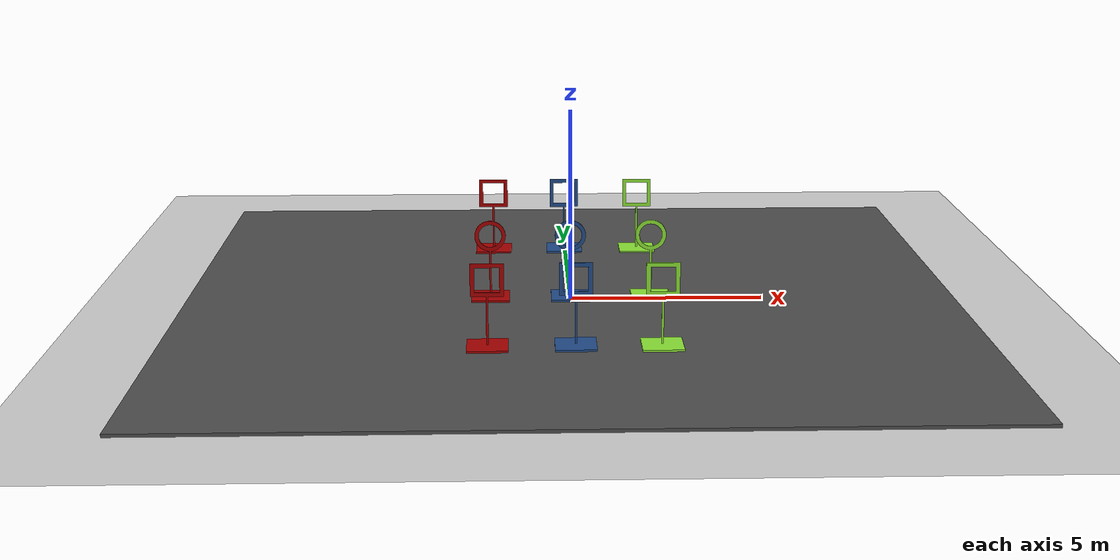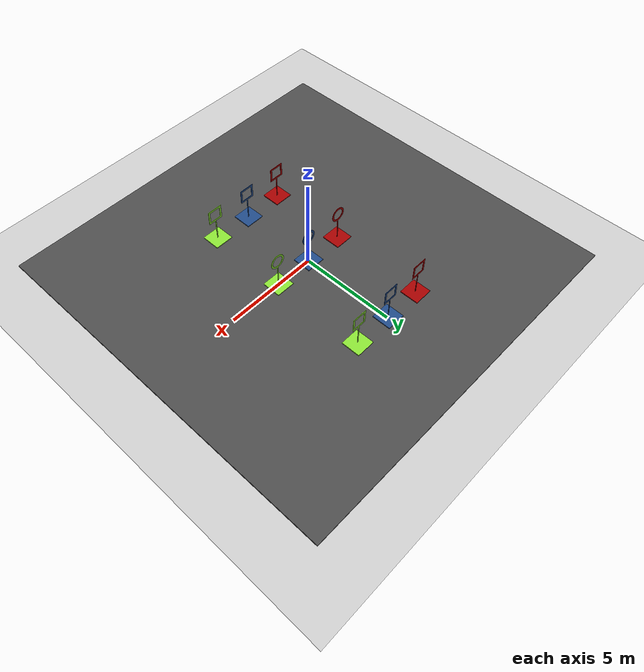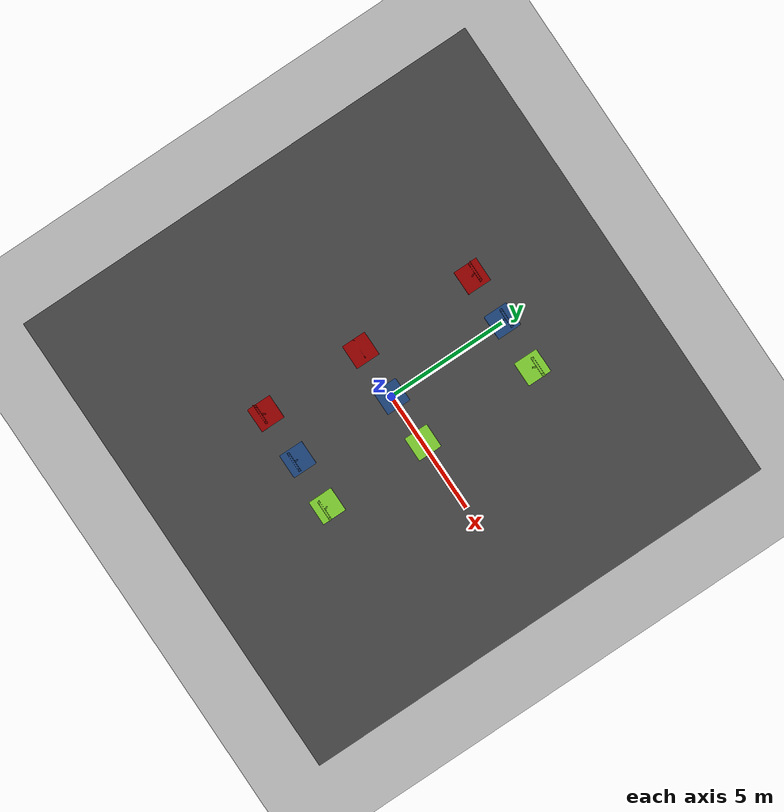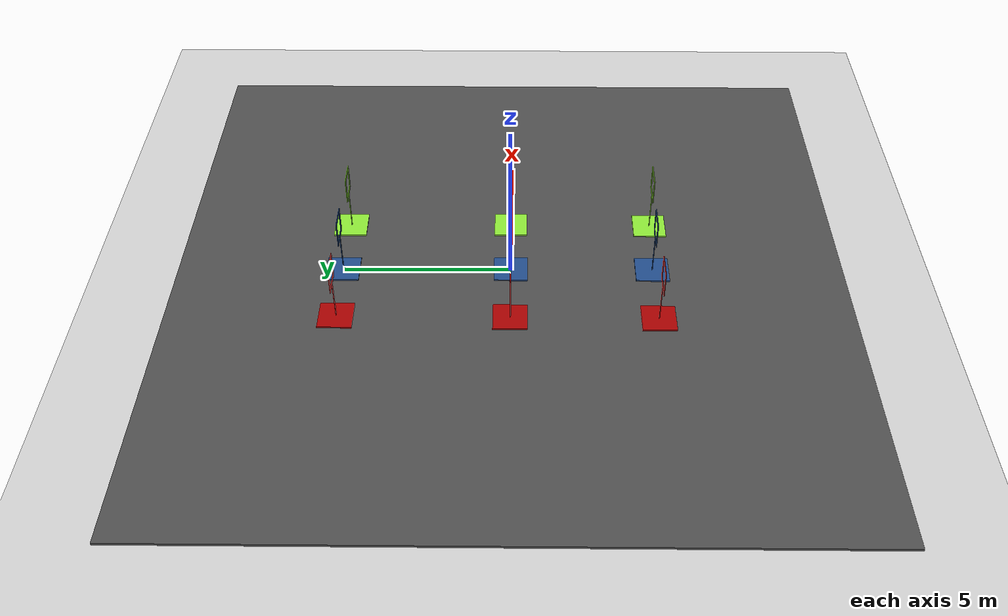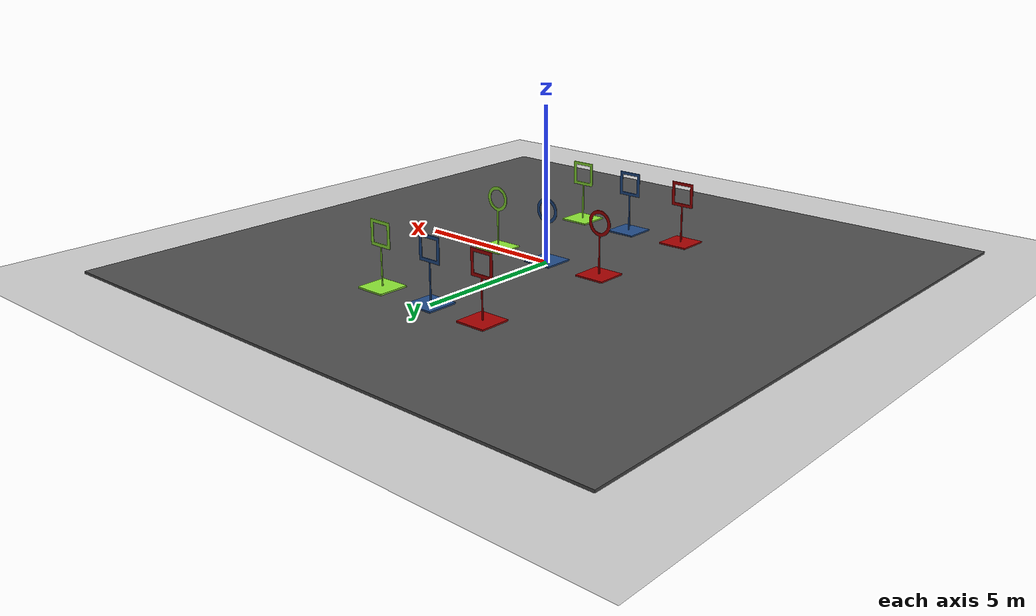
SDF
<sdf version="1.7">
 <world name="default">
  <light name="sun" type="directional">
   <pose>0 0 10 0 -0 0</pose>
   <diffuse>0.8 0.8 0.8 1</diffuse>
   <specular>0.2 0.2 0.2 1</specular>
   <attenuation>
    <range>1000</range>
    <constant>0.9</constant>
    <linear>0.01</linear>
    <quadratic>0.001</quadratic>
   </attenuation>
   <direction>-0.5 0.1 -0.9</direction>
   <spot><inner_angle>0</inner_angle><outer_angle>0</outer_angle><falloff>0</falloff></spot>
  </light>
  <model name="ground_plane">
   <static>1</static>
   <link name="link">
    <collision name="collision">
     <geometry><plane><normal>0 0 1</normal><size>100 100</size></plane></geometry>
     <surface><friction><ode><mu>100</mu><mu2>50</mu2></ode></friction></surface>
    </collision>
    <visual name="visual">
     <cast_shadows>0</cast_shadows>
     <geometry><plane><normal>0 0 1</normal><size>100 100</size></plane></geometry>
     <material>
      <script><uri>file://media/materials/scripts/gazebo.material</uri><name>Gazebo/Grey</name></script>
     </material>
    </visual>
   </link>
  </model>
  <gravity>0 0 -9.8</gravity>
  <magnetic_field>6e-06 2.3e-05 -4.2e-05</magnetic_field>
  <atmosphere type="adiabatic"/>
  <physics type="ode">
   <max_step_size>0.001</max_step_size>
   <real_time_factor>1</real_time_factor>
   <real_time_update_rate>1000</real_time_update_rate>
  </physics>
  <scene><ambient>0.4 0.4 0.4 1</ambient><background>0.7 0.7 0.7 1</background><shadows>1</shadows></scene>
  <spherical_coordinates>
   <surface_model>EARTH_WGS84</surface_model>
   <latitude_deg>0</latitude_deg>
   <longitude_deg>0</longitude_deg>
   <elevation>0</elevation>
   <heading_deg>0</heading_deg>
  </spherical_coordinates>
  <model name="asphalt_plane">
   <static>1</static>
   <link name="link">
    <collision name="collision"><geometry><box><size>20 20 0.1</size></box></geometry></collision>
    <visual name="visual">
     <cast_shadows>0</cast_shadows>
     <geometry><box><size>20 20 0.1</size></box></geometry>
     <material>
      <script>
       <uri>model://asphalt_plane/materials/scripts</uri>
       <uri>model://asphalt_plane/materials/textures</uri>
       <name>vrc/asphalt</name>
      </script>
     </material>
    </visual>
   </link>
   <pose>0.008905 0.014956 0 0 -0 0</pose>
  </model>
  <model name="square_gate">
   <link name="link_0">
    <inertial>
     <mass>1</mass>
     <inertia>
      <ixx>0.166667</ixx>
      <ixy>0</ixy>
      <ixz>0</ixz>
      <iyy>0.166667</iyy>
      <iyz>0</iyz>
      <izz>0.166667</izz>
     </inertia>
    </inertial>
    <visual name="visual">
     <geometry><mesh><uri>model://square_gate/square_gate.dae</uri><scale>1 1 1</scale></mesh></geometry>
     <material>
      <lighting>1</lighting>
      <script><uri>file://media/materials/scripts/gazebo.material</uri><name>Gazebo/Grey</name></script>
      <shader type="pixel"><normal_map>__default__</normal_map></shader>
      <ambient>0.541 0.886 0.204 1</ambient>
      <diffuse>0.7 0.7 0.7 1</diffuse>
      <specular>0.01 0.01 0.01 1</specular>
      <emissive>0 0 0 1</emissive>
     </material>
    </visual>
    <collision name="collision">
     <geometry><mesh><uri>model://square_gate/square_gate.dae</uri><scale>1 1 1</scale></mesh></geometry>
     <surface>
      <friction>
       <ode><mu>1</mu><mu2>1</mu2><fdir1>0 0 0</fdir1><slip1>0</slip1><slip2>0</slip2></ode>
       <torsional>
        <coefficient>1</coefficient>
        <patch_radius>0</patch_radius>
        <surface_radius>0</surface_radius>
        <use_patch_radius>1</use_patch_radius>
        <ode><slip>0</slip></ode>
       </torsional>
      </friction>
      <bounce><restitution_coefficient>0</restitution_coefficient><threshold>1e+06</threshold></bounce>
      <contact>
       <collide_without_contact>0</collide_without_contact>
       <collide_without_contact_bitmask>1</collide_without_contact_bitmask>
       <collide_bitmask>1</collide_bitmask>
       <ode>
        <soft_cfm>0</soft_cfm>
        <soft_erp>0.2</soft_erp>
        <kp>1e+13</kp>
        <kd>1</kd>
        <max_vel>0.01</max_vel>
        <min_depth>0</min_depth>
       </ode>
       <bullet>
        <split_impulse>1</split_impulse>
        <split_impulse_penetration_threshold>-0.01</split_impulse_penetration_threshold>
        <soft_cfm>0</soft_cfm>
        <soft_erp>0.2</soft_erp>
        <kp>1e+13</kp>
        <kd>1</kd>
       </bullet>
      </contact>
     </surface>
    </collision>
   </link>
   <static>0</static>
   <pose>2.06436 -4.30336 0.04999 0 -0 0.000399</pose>
  </model>
  <model name="square_gate_blue">
   <link name="link_0">
    <inertial>
     <mass>1</mass>
     <inertia>
      <ixx>0.166667</ixx>
      <ixy>0</ixy>
      <ixz>0</ixz>
      <iyy>0.166667</iyy>
      <iyz>0</iyz>
      <izz>0.166667</izz>
     </inertia>
    </inertial>
    <visual name="visual">
     <geometry><mesh><uri>model://square_gate/square_gate.dae</uri><scale>1 1 1</scale></mesh></geometry>
     <material>
      <lighting>1</lighting>
      <script><uri>file://media/materials/scripts/gazebo.material</uri><name>Gazebo/Grey</name></script>
      <shader type="pixel"><normal_map>__default__</normal_map></shader>
      <ambient>0.125 0.29 0.529 1</ambient>
      <diffuse>0.7 0.7 0.7 1</diffuse>
      <specular>0.01 0.01 0.01 1</specular>
      <emissive>0 0 0 1</emissive>
     </material>
    </visual>
    <collision name="collision">
     <geometry><mesh><uri>model://square_gate/square_gate.dae</uri><scale>1 1 1</scale></mesh></geometry>
     <surface>
      <friction>
       <ode><mu>1</mu><mu2>1</mu2><fdir1>0 0 0</fdir1><slip1>0</slip1><slip2>0</slip2></ode>
       <torsional>
        <coefficient>1</coefficient>
        <patch_radius>0</patch_radius>
        <surface_radius>0</surface_radius>
        <use_patch_radius>1</use_patch_radius>
        <ode><slip>0</slip></ode>
       </torsional>
      </friction>
      <bounce><restitution_coefficient>0</restitution_coefficient><threshold>1e+06</threshold></bounce>
      <contact>
       <collide_without_contact>0</collide_without_contact>
       <collide_without_contact_bitmask>1</collide_without_contact_bitmask>
       <collide_bitmask>1</collide_bitmask>
       <ode>
        <soft_cfm>0</soft_cfm>
        <soft_erp>0.2</soft_erp>
        <kp>1e+13</kp>
        <kd>1</kd>
        <max_vel>0.01</max_vel>
        <min_depth>0</min_depth>
       </ode>
       <bullet>
        <split_impulse>1</split_impulse>
        <split_impulse_penetration_threshold>-0.01</split_impulse_penetration_threshold>
        <soft_cfm>0</soft_cfm>
        <soft_erp>0.2</soft_erp>
        <kp>1e+13</kp>
        <kd>1</kd>
       </bullet>
      </contact>
     </surface>
    </collision>
   </link>
   <static>0</static>
   <pose>-0.004723 -4.24196 0.05 0 -0 0.000399</pose>
  </model>
  <model name="square_gate_red">
   <link name="link_0">
    <inertial>
     <mass>1</mass>
     <inertia>
      <ixx>0.166667</ixx>
      <ixy>0</ixy>
      <ixz>0</ixz>
      <iyy>0.166667</iyy>
      <iyz>0</iyz>
      <izz>0.166667</izz>
     </inertia>
    </inertial>
    <visual name="visual">
     <geometry><mesh><uri>model://square_gate/square_gate.dae</uri><scale>1 1 1</scale></mesh></geometry>
     <material>
      <lighting>1</lighting>
      <script><uri>file://media/materials/scripts/gazebo.material</uri><name>Gazebo/Grey</name></script>
      <shader type="pixel"><normal_map>__default__</normal_map></shader>
      <ambient>0.643 0 0 1</ambient>
      <diffuse>0.7 0.7 0.7 1</diffuse>
      <specular>0.01 0.01 0.01 1</specular>
      <emissive>0 0 0 1</emissive>
     </material>
    </visual>
    <collision name="collision">
     <geometry><mesh><uri>model://square_gate/square_gate.dae</uri><scale>1 1 1</scale></mesh></geometry>
     <surface>
      <friction>
       <ode><mu>1</mu><mu2>1</mu2><fdir1>0 0 0</fdir1><slip1>0</slip1><slip2>0</slip2></ode>
       <torsional>
        <coefficient>1</coefficient>
        <patch_radius>0</patch_radius>
        <surface_radius>0</surface_radius>
        <use_patch_radius>1</use_patch_radius>
        <ode><slip>0</slip></ode>
       </torsional>
      </friction>
      <bounce><restitution_coefficient>0</restitution_coefficient><threshold>1e+06</threshold></bounce>
      <contact>
       <collide_without_contact>0</collide_without_contact>
       <collide_without_contact_bitmask>1</collide_without_contact_bitmask>
       <collide_bitmask>1</collide_bitmask>
       <ode>
        <soft_cfm>0</soft_cfm>
        <soft_erp>0.2</soft_erp>
        <kp>1e+13</kp>
        <kd>1</kd>
        <max_vel>0.01</max_vel>
        <min_depth>0</min_depth>
       </ode>
       <bullet>
        <split_impulse>1</split_impulse>
        <split_impulse_penetration_threshold>-0.01</split_impulse_penetration_threshold>
        <soft_cfm>0</soft_cfm>
        <soft_erp>0.2</soft_erp>
        <kp>1e+13</kp>
        <kd>1</kd>
       </bullet>
      </contact>
     </surface>
    </collision>
   </link>
   <static>0</static>
   <pose>-2.11137 -4.28338 0.05 0 -0 0.000399</pose>
  </model>
  <model name="circle_gate_red">
   <link name="link_0">
    <inertial>
     <mass>1</mass>
     <inertia>
      <ixx>0.166667</ixx>
      <ixy>0</ixy>
      <ixz>0</ixz>
      <iyy>0.166667</iyy>
      <iyz>0</iyz>
      <izz>0.166667</izz>
     </inertia>
    </inertial>
    <visual name="visual">
     <geometry><mesh><uri>model://circle_gate/circle_gate.dae</uri><scale>1 1 1</scale></mesh></geometry>
     <material>
      <lighting>1</lighting>
      <script><uri>file://media/materials/scripts/gazebo.material</uri><name>Gazebo/Grey</name></script>
      <shader type="pixel"><normal_map>__default__</normal_map></shader>
      <ambient>0.643 0 0 1</ambient>
      <diffuse>0.7 0.7 0.7 1</diffuse>
      <specular>0.01 0.01 0.01 1</specular>
      <emissive>0 0 0 1</emissive>
     </material>
    </visual>
    <collision name="collision">
     <geometry><mesh><uri>model://circle_gate/circle_gate.dae</uri><scale>1 1 1</scale></mesh></geometry>
     <surface>
      <friction>
       <ode><mu>1</mu><mu2>1</mu2><fdir1>0 0 0</fdir1><slip1>0</slip1><slip2>0</slip2></ode>
       <torsional>
        <coefficient>1</coefficient>
        <patch_radius>0</patch_radius>
        <surface_radius>0</surface_radius>
        <use_patch_radius>1</use_patch_radius>
        <ode><slip>0</slip></ode>
       </torsional>
      </friction>
      <bounce><restitution_coefficient>0</restitution_coefficient><threshold>1e+06</threshold></bounce>
      <contact>
       <collide_without_contact>0</collide_without_contact>
       <collide_without_contact_bitmask>1</collide_without_contact_bitmask>
       <collide_bitmask>1</collide_bitmask>
       <ode>
        <soft_cfm>0</soft_cfm>
        <soft_erp>0.2</soft_erp>
        <kp>1e+13</kp>
        <kd>1</kd>
        <max_vel>0.01</max_vel>
        <min_depth>0</min_depth>
       </ode>
       <bullet>
        <split_impulse>1</split_impulse>
        <split_impulse_penetration_threshold>-0.01</split_impulse_penetration_threshold>
        <soft_cfm>0</soft_cfm>
        <soft_erp>0.2</soft_erp>
        <kp>1e+13</kp>
        <kd>1</kd>
       </bullet>
      </contact>
     </surface>
    </collision>
   </link>
   <static>0</static>
   <pose>-2.09564 0.002686 0.05 0 -0 0</pose>
  </model>
  <model name="square_gate_0">
   <link name="link_0">
    <inertial>
     <mass>1</mass>
     <inertia>
      <ixx>0.166667</ixx>
      <ixy>0</ixy>
      <ixz>0</ixz>
      <iyy>0.166667</iyy>
      <iyz>0</iyz>
      <izz>0.166667</izz>
     </inertia>
    </inertial>
    <visual name="visual">
     <geometry><mesh><uri>model://square_gate/square_gate.dae</uri><scale>1 1 1</scale></mesh></geometry>
     <material>
      <lighting>1</lighting>
      <script><uri>file://media/materials/scripts/gazebo.material</uri><name>Gazebo/Grey</name></script>
      <shader type="pixel"><normal_map>__default__</normal_map></shader>
      <ambient>0.541 0.886 0.204 1</ambient>
      <diffuse>0.7 0.7 0.7 1</diffuse>
      <specular>0.01 0.01 0.01 1</specular>
      <emissive>0 0 0 1</emissive>
     </material>
    </visual>
    <collision name="collision">
     <geometry><mesh><uri>model://square_gate/square_gate.dae</uri><scale>1 1 1</scale></mesh></geometry>
     <surface>
      <friction>
       <ode><mu>1</mu><mu2>1</mu2><fdir1>0 0 0</fdir1><slip1>0</slip1><slip2>0</slip2></ode>
       <torsional>
        <coefficient>1</coefficient>
        <patch_radius>0</patch_radius>
        <surface_radius>0</surface_radius>
        <use_patch_radius>1</use_patch_radius>
        <ode><slip>0</slip></ode>
       </torsional>
      </friction>
      <bounce><restitution_coefficient>0</restitution_coefficient><threshold>1e+06</threshold></bounce>
      <contact>
       <collide_without_contact>0</collide_without_contact>
       <collide_without_contact_bitmask>1</collide_without_contact_bitmask>
       <collide_bitmask>1</collide_bitmask>
       <ode>
        <soft_cfm>0</soft_cfm>
        <soft_erp>0.2</soft_erp>
        <kp>1e+13</kp>
        <kd>1</kd>
        <max_vel>0.01</max_vel>
        <min_depth>0</min_depth>
       </ode>
       <bullet>
        <split_impulse>1</split_impulse>
        <split_impulse_penetration_threshold>-0.01</split_impulse_penetration_threshold>
        <soft_cfm>0</soft_cfm>
        <soft_erp>0.2</soft_erp>
        <kp>1e+13</kp>
        <kd>1</kd>
       </bullet>
      </contact>
     </surface>
    </collision>
   </link>
   <static>0</static>
   <pose>2.03216 5.00526 0.05 0 -0 0.000399</pose>
  </model>
  <model name="square_gate_red_0">
   <link name="link_0">
    <inertial>
     <mass>1</mass>
     <inertia>
      <ixx>0.166667</ixx>
      <ixy>0</ixy>
      <ixz>0</ixz>
      <iyy>0.166667</iyy>
      <iyz>0</iyz>
      <izz>0.166667</izz>
     </inertia>
    </inertial>
    <visual name="visual">
     <geometry><mesh><uri>model://square_gate/square_gate.dae</uri><scale>1 1 1</scale></mesh></geometry>
     <material>
      <lighting>1</lighting>
      <script><uri>file://media/materials/scripts/gazebo.material</uri><name>Gazebo/Grey</name></script>
      <shader type="pixel"><normal_map>__default__</normal_map></shader>
      <ambient>0.643 0 0 1</ambient>
      <diffuse>0.7 0.7 0.7 1</diffuse>
      <specular>0.01 0.01 0.01 1</specular>
      <emissive>0 0 0 1</emissive>
     </material>
    </visual>
    <collision name="collision">
     <geometry><mesh><uri>model://square_gate/square_gate.dae</uri><scale>1 1 1</scale></mesh></geometry>
     <surface>
      <friction>
       <ode><mu>1</mu><mu2>1</mu2><fdir1>0 0 0</fdir1><slip1>0</slip1><slip2>0</slip2></ode>
       <torsional>
        <coefficient>1</coefficient>
        <patch_radius>0</patch_radius>
        <surface_radius>0</surface_radius>
        <use_patch_radius>1</use_patch_radius>
        <ode><slip>0</slip></ode>
       </torsional>
      </friction>
      <bounce><restitution_coefficient>0</restitution_coefficient><threshold>1e+06</threshold></bounce>
      <contact>
       <collide_without_contact>0</collide_without_contact>
       <collide_without_contact_bitmask>1</collide_without_contact_bitmask>
       <collide_bitmask>1</collide_bitmask>
       <ode>
        <soft_cfm>0</soft_cfm>
        <soft_erp>0.2</soft_erp>
        <kp>1e+13</kp>
        <kd>1</kd>
        <max_vel>0.01</max_vel>
        <min_depth>0</min_depth>
       </ode>
       <bullet>
        <split_impulse>1</split_impulse>
        <split_impulse_penetration_threshold>-0.01</split_impulse_penetration_threshold>
        <soft_cfm>0</soft_cfm>
        <soft_erp>0.2</soft_erp>
        <kp>1e+13</kp>
        <kd>1</kd>
       </bullet>
      </contact>
     </surface>
    </collision>
   </link>
   <static>0</static>
   <pose>-2.0724 5.03199 0.05 0 -0 0.000399</pose>
  </model>
  <model name="circle_gate_blue">
   <link name="link_0">
    <inertial>
     <mass>1</mass>
     <inertia>
      <ixx>0.166667</ixx>
      <ixy>0</ixy>
      <ixz>0</ixz>
      <iyy>0.166667</iyy>
      <iyz>0</iyz>
      <izz>0.166667</izz>
     </inertia>
    </inertial>
    <visual name="visual">
     <geometry><mesh><uri>model://circle_gate/circle_gate.dae</uri><scale>1 1 1</scale></mesh></geometry>
     <material>
      <lighting>1</lighting>
      <script><uri>file://media/materials/scripts/gazebo.material</uri><name>Gazebo/Grey</name></script>
      <shader type="pixel"><normal_map>__default__</normal_map></shader>
      <ambient>0.125 0.29 0.529 1</ambient>
      <diffuse>0.7 0.7 0.7 1</diffuse>
      <specular>0.01 0.01 0.01 1</specular>
      <emissive>0 0 0 1</emissive>
     </material>
    </visual>
    <collision name="collision">
     <geometry><mesh><uri>model://circle_gate/circle_gate.dae</uri><scale>1 1 1</scale></mesh></geometry>
     <surface>
      <friction>
       <ode><mu>1</mu><mu2>1</mu2><fdir1>0 0 0</fdir1><slip1>0</slip1><slip2>0</slip2></ode>
       <torsional>
        <coefficient>1</coefficient>
        <patch_radius>0</patch_radius>
        <surface_radius>0</surface_radius>
        <use_patch_radius>1</use_patch_radius>
        <ode><slip>0</slip></ode>
       </torsional>
      </friction>
      <bounce><restitution_coefficient>0</restitution_coefficient><threshold>1e+06</threshold></bounce>
      <contact>
       <collide_without_contact>0</collide_without_contact>
       <collide_without_contact_bitmask>1</collide_without_contact_bitmask>
       <collide_bitmask>1</collide_bitmask>
       <ode>
        <soft_cfm>0</soft_cfm>
        <soft_erp>0.2</soft_erp>
        <kp>1e+13</kp>
        <kd>1</kd>
        <max_vel>0.01</max_vel>
        <min_depth>0</min_depth>
       </ode>
       <bullet>
        <split_impulse>1</split_impulse>
        <split_impulse_penetration_threshold>-0.01</split_impulse_penetration_threshold>
        <soft_cfm>0</soft_cfm>
        <soft_erp>0.2</soft_erp>
        <kp>1e+13</kp>
        <kd>1</kd>
       </bullet>
      </contact>
     </surface>
    </collision>
   </link>
   <static>0</static>
   <pose>-0.013844 0.003941 0.05 0 -0 0</pose>
  </model>
  <model name="circle_gate">
   <link name="link_0">
    <inertial>
     <mass>1</mass>
     <inertia>
      <ixx>0.166667</ixx>
      <ixy>0</ixy>
      <ixz>0</ixz>
      <iyy>0.166667</iyy>
      <iyz>0</iyz>
      <izz>0.166667</izz>
     </inertia>
    </inertial>
    <visual name="visual">
     <geometry><mesh><uri>model://circle_gate/circle_gate.dae</uri><scale>1 1 1</scale></mesh></geometry>
     <material>
      <lighting>1</lighting>
      <script><uri>file://media/materials/scripts/gazebo.material</uri><name>Gazebo/Grey</name></script>
      <shader type="pixel"><normal_map>__default__</normal_map></shader>
      <ambient>0.541 0.886 0.204 1</ambient>
      <diffuse>0.7 0.7 0.7 1</diffuse>
      <specular>0.01 0.01 0.01 1</specular>
      <emissive>0 0 0 1</emissive>
     </material>
    </visual>
    <collision name="collision">
     <geometry><mesh><uri>model://circle_gate/circle_gate.dae</uri><scale>1 1 1</scale></mesh></geometry>
     <surface>
      <friction>
       <ode><mu>1</mu><mu2>1</mu2><fdir1>0 0 0</fdir1><slip1>0</slip1><slip2>0</slip2></ode>
       <torsional>
        <coefficient>1</coefficient>
        <patch_radius>0</patch_radius>
        <surface_radius>0</surface_radius>
        <use_patch_radius>1</use_patch_radius>
        <ode><slip>0</slip></ode>
       </torsional>
      </friction>
      <bounce><restitution_coefficient>0</restitution_coefficient><threshold>1e+06</threshold></bounce>
      <contact>
       <collide_without_contact>0</collide_without_contact>
       <collide_without_contact_bitmask>1</collide_without_contact_bitmask>
       <collide_bitmask>1</collide_bitmask>
       <ode>
        <soft_cfm>0</soft_cfm>
        <soft_erp>0.2</soft_erp>
        <kp>1e+13</kp>
        <kd>1</kd>
        <max_vel>0.01</max_vel>
        <min_depth>0</min_depth>
       </ode>
       <bullet>
        <split_impulse>1</split_impulse>
        <split_impulse_penetration_threshold>-0.01</split_impulse_penetration_threshold>
        <soft_cfm>0</soft_cfm>
        <soft_erp>0.2</soft_erp>
        <kp>1e+13</kp>
        <kd>1</kd>
       </bullet>
      </contact>
     </surface>
    </collision>
   </link>
   <static>0</static>
   <pose>2.08082 0.014799 0.05 0 -0 0</pose>
  </model>
  <model name="square_gate_blue_0">
   <link name="link_0">
    <inertial>
     <mass>1</mass>
     <inertia>
      <ixx>0.166667</ixx>
      <ixy>0</ixy>
      <ixz>0</ixz>
      <iyy>0.166667</iyy>
      <iyz>0</iyz>
      <izz>0.166667</izz>
     </inertia>
    </inertial>
    <visual name="visual">
     <geometry><mesh><uri>model://square_gate/square_gate.dae</uri><scale>1 1 1</scale></mesh></geometry>
     <material>
      <lighting>1</lighting>
      <script><uri>file://media/materials/scripts/gazebo.material</uri><name>Gazebo/Grey</name></script>
      <shader type="pixel"><normal_map>__default__</normal_map></shader>
      <ambient>0.125 0.29 0.529 1</ambient>
      <diffuse>0.7 0.7 0.7 1</diffuse>
      <specular>0.01 0.01 0.01 1</specular>
      <emissive>0 0 0 1</emissive>
     </material>
    </visual>
    <collision name="collision">
     <geometry><mesh><uri>model://square_gate/square_gate.dae</uri><scale>1 1 1</scale></mesh></geometry>
     <surface>
      <friction>
       <ode><mu>1</mu><mu2>1</mu2><fdir1>0 0 0</fdir1><slip1>0</slip1><slip2>0</slip2></ode>
       <torsional>
        <coefficient>1</coefficient>
        <patch_radius>0</patch_radius>
        <surface_radius>0</surface_radius>
        <use_patch_radius>1</use_patch_radius>
        <ode><slip>0</slip></ode>
       </torsional>
      </friction>
      <bounce><restitution_coefficient>0</restitution_coefficient><threshold>1e+06</threshold></bounce>
      <contact>
       <collide_without_contact>0</collide_without_contact>
       <collide_without_contact_bitmask>1</collide_without_contact_bitmask>
       <collide_bitmask>1</collide_bitmask>
       <ode>
        <soft_cfm>0</soft_cfm>
        <soft_erp>0.2</soft_erp>
        <kp>1e+13</kp>
        <kd>1</kd>
        <max_vel>0.01</max_vel>
        <min_depth>0</min_depth>
       </ode>
       <bullet>
        <split_impulse>1</split_impulse>
        <split_impulse_penetration_threshold>-0.01</split_impulse_penetration_threshold>
        <soft_cfm>0</soft_cfm>
        <soft_erp>0.2</soft_erp>
        <kp>1e+13</kp>
        <kd>1</kd>
       </bullet>
      </contact>
     </surface>
    </collision>
   </link>
   <static>0</static>
   <pose>-0.052169 5.03859 0.05 0 -0 0.000399</pose>
  </model>
 </world>
</sdf>
